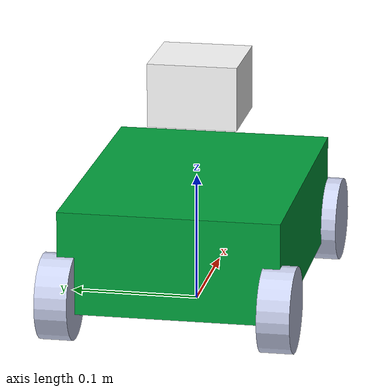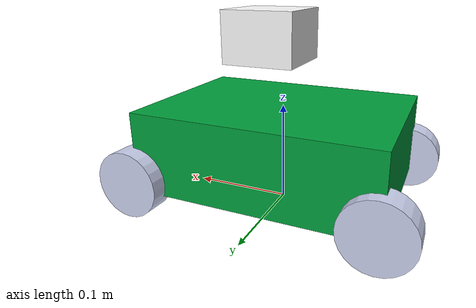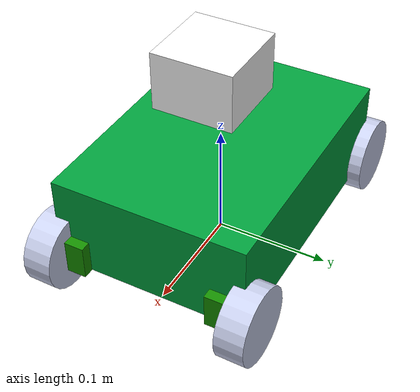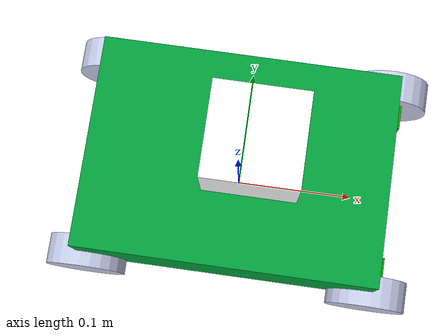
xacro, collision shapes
<?xml version="1.0" encoding="utf-8"?>
<robot name="picar2" xmlns:xacro="http://ros.org/wiki/xacro">

  <xacro:arg name="port"    default="/dev/ttyYahboom0"/>
  <xacro:arg name="baud"    default="460800"/>
  <xacro:arg name="use_sim" default="false"/>

  <ros2_control name="picar2" type="system">
    <hardware>
      <xacro:if value="$(arg use_sim)">
        <plugin>gz_ros2_control/GazeboSimSystem</plugin>
      </xacro:if>
      <xacro:unless value="$(arg use_sim)">
        <plugin>picar2_control/Picar2Hardware</plugin>
        <param name="port">$(arg port)</param>
        <param name="baud">$(arg baud)</param>
        <param name="steer_lut_us">-595 -454 -410 -364 -329 -299 -271 -252 -202 -151 -121 -101 128 154	193	257	308	354	433	464	493	545</param>
        <param name="steer_lut_rad">0.6756 0.5308 0.4578 0.4058 0.3513 0.3176 0.2790 0.2443 0.1994 0.1392 0.1062 0.0668 -0.1276 -0.1646 -0.2049 -0.2829	-0.3129	-0.3681	-0.4680	-0.4844	-0.5078	-0.6109</param>
      </xacro:unless>
    </hardware>

    <!-- Rear drive wheels (velocity-controlled) -->
    <joint name="back_left_joint">
      <command_interface name="velocity"/>
      <state_interface name="position"/>
      <state_interface name="velocity"/>
    </joint>
    <joint name="back_right_joint">
      <command_interface name="velocity"/>
      <state_interface name="position"/>
      <state_interface name="velocity"/>
    </joint>

    <!-- Front steering — single servo drives both; controller commands each
         independently (Ackermann inner/outer angles); write() averages them -->
    <joint name="front_left_steer_joint">
      <command_interface name="position">
        <param name="min">-0.6</param>
        <param name="max">0.6</param>
      </command_interface>
      <state_interface name="position"/>
    </joint>
    <joint name="front_right_steer_joint">
      <command_interface name="position">
        <param name="min">-0.6</param>
        <param name="max">0.6</param>
      </command_interface>
      <state_interface name="position"/>
    </joint>

    <!-- Front wheels — passive (no encoder); position held at 0 for TF -->
    <joint name="front_left_wheel_joint">
      <state_interface name="position"/>
    </joint>
    <joint name="front_right_wheel_joint">
      <state_interface name="position"/>
    </joint>
  </ros2_control>

  <!-- Gazebo: gz_ros2_control plugin (sim only) -->
  <xacro:if value="$(arg use_sim)">
    <gazebo>
      <plugin filename="gz_ros2_control-system"
              name="gz_ros2_control::GazeboSimROS2ControlPlugin">
        <parameters>$(find picar2_bringup)/config/controllers.yaml</parameters>
      </plugin>
    </gazebo>
  </xacro:if>

  <!-- ═══════════════════════════════════════════════════
       Links
       ═══════════════════════════════════════════════════ -->
  <link name="base_footprint"/>

  <link name="imu_link"/>

  <link name="base_link">
    <inertial>
      <origin xyz="-0.014025 -0.00011707 0.082168" rpy="0 0 0"/>
      <mass value="0.52447"/>
      <inertia ixx="0.00066245" ixy="-3.1852E-08" ixz="-4.6503E-05"
               iyy="0.0012486"  iyz="-3.356E-08"
               izz="0.0018052"/>
    </inertial>
    <visual>
      <origin xyz="0 0 0" rpy="0 0 0"/>
      <geometry><mesh filename="package://picar2_description/meshes/base_link.STL"/></geometry>
      <material name=""><color rgba="0 0.62745 0.23529 1"/></material>
    </visual>
    <collision>
      <origin xyz="0 0 0.04" rpy="0 0 0"/>
      <geometry><box size="0.24 0.17 0.08"/></geometry>
    </collision>
  </link>

  <link name="back_right_link">
    <inertial>
      <origin xyz="3.8959E-08 0.0015615 -6.3774E-08" rpy="0 0 0"/>
      <mass value="0.060236"/>
      <inertia ixx="2.5326E-05" ixy="-2.701E-10"  ixz="3.3546E-09"
               iyy="4.4342E-05" iyz="-2.9324E-10"
               izz="2.531E-05"/>
    </inertial>
    <visual>
      <origin xyz="0 0 0" rpy="0 0 0"/>
      <geometry><mesh filename="package://picar2_description/meshes/back_right_link.STL"/></geometry>
      <material name=""><color rgba="0.79216 0.81961 0.93333 1"/></material>
    </visual>
    <collision>
      <origin xyz="0 0 0" rpy="1.5708 0 0"/>
      <geometry><cylinder radius="0.033" length="0.025"/></geometry>
    </collision>
  </link>

  <link name="back_left_link">
    <inertial>
      <origin xyz="-6.87E-08 -0.0015615 3.003E-08" rpy="0 0 0"/>
      <mass value="0.060236"/>
      <inertia ixx="2.531E-05"  ixy="-3.651E-11"  ixz="1.156E-09"
               iyy="4.4343E-05" iyz="-7.02E-11"
               izz="2.5328E-05"/>
    </inertial>
    <visual>
      <origin xyz="0 0 0" rpy="0 0 0"/>
      <geometry><mesh filename="package://picar2_description/meshes/back_right_link.STL"/></geometry>
      <material name=""><color rgba="0.79216 0.81961 0.93333 1"/></material>
    </visual>
    <collision>
      <origin xyz="0 0 0" rpy="1.5708 0 0"/>
      <geometry><cylinder radius="0.033" length="0.025"/></geometry>
    </collision>
  </link>

  <link name="front_left_steer">
    <inertial>
      <origin xyz="-0.0044676 0.0031203 -0.014101" rpy="0 0 0"/>
      <mass value="0.002176"/>
      <inertia ixx="1.4001E-07" ixy="-7.8357E-08" ixz="1.1741E-12"
               iyy="2.7801E-07" iyz="7.8069E-12"
               izz="2.909E-07"/>
    </inertial>
    <visual>
      <origin xyz="0 0 0" rpy="0 0 0"/>
      <geometry><mesh filename="package://picar2_description/meshes/front_left_steer.STL"/></geometry>
      <material name=""><color rgba="0.082353 0.56078 0 1"/></material>
    </visual>
    <collision>
      <origin xyz="0 0 -0.01" rpy="0 0 0"/>
      <geometry><box size="0.02 0.02 0.03"/></geometry>
    </collision>
  </link>

  <link name="front_left_wheel">
    <inertial>
      <origin xyz="-6.1417E-08 -0.0048115 4.113E-08" rpy="0 0 0"/>
      <mass value="0.060236"/>
      <inertia ixx="2.531E-05"  ixy="2.9987E-10" ixz="3.7781E-09"
               iyy="4.4342E-05" iyz="2.6181E-10"
               izz="2.5326E-05"/>
    </inertial>
    <visual>
      <origin xyz="0 0 0" rpy="0 0 0"/>
      <geometry><mesh filename="package://picar2_description/meshes/back_right_link.STL"/></geometry>
      <material name=""><color rgba="0.79216 0.81961 0.93333 1"/></material>
    </visual>
    <collision>
      <origin xyz="0 0 0" rpy="1.5708 0 0"/>
      <geometry><cylinder radius="0.033" length="0.025"/></geometry>
    </collision>
  </link>

  <link name="front_right_steer">
    <inertial>
      <origin xyz="-0.0045387 -0.0030159 -0.012099" rpy="0 0 0"/>
      <mass value="0.002176"/>
      <inertia ixx="1.4372E-07" ixy="8.1469E-08"  ixz="-1.0492E-12"
               iyy="2.7431E-07" iyz="7.8675E-12"
               izz="2.909E-07"/>
    </inertial>
    <visual>
      <origin xyz="0 0 0" rpy="0 0 0"/>
      <geometry><mesh filename="package://picar2_description/meshes/front_left_steer.STL"/></geometry>
      <material name=""><color rgba="0.082353 0.56078 0 1"/></material>
    </visual>
    <collision>
      <origin xyz="0 0 -0.01" rpy="0 0 0"/>
      <geometry><box size="0.02 0.02 0.03"/></geometry>
    </collision>
  </link>

  <link name="front_right_wheel">
    <inertial>
      <origin xyz="5.5753E-08 0.0015615 -5.0453E-08" rpy="0 0 0"/>
      <mass value="0.060236"/>
      <inertia ixx="2.5325E-05" ixy="5.201E-11"  ixz="7.1484E-09"
               iyy="4.4343E-05" iyz="6.0924E-11"
               izz="2.5314E-05"/>
    </inertial>
    <visual>
      <origin xyz="0 0 0" rpy="0 0 0"/>
      <geometry><mesh filename="package://picar2_description/meshes/back_right_link.STL"/></geometry>
      <material name=""><color rgba="0.79216 0.81961 0.93333 1"/></material>
    </visual>
    <collision>
      <origin xyz="0 0 0" rpy="1.5708 0 0"/>
      <geometry><cylinder radius="0.033" length="0.025"/></geometry>
    </collision>
  </link>

  <link name="laser_link">
    <inertial>
      <origin xyz="0 0 0" rpy="0 0 0"/>
      <mass value="0"/>
      <inertia ixx="0" ixy="0" ixz="0" iyy="0" iyz="0" izz="0"/>
    </inertial>
    <visual>
      <origin xyz="0 0 0" rpy="0 0 0"/>
      <geometry><mesh filename="package://picar2_description/meshes/laser_link.STL"/></geometry>
      <material name=""><color rgba="1 1 1 1"/></material>
    </visual>
    <collision>
      <origin xyz="0 0 0" rpy="0 0 0"/>
      <geometry><box size="0.07 0.07 0.05"/></geometry>
    </collision>
  </link>

  <!-- ═══════════════════════════════════════════════════
       Joints
       ═══════════════════════════════════════════════════ -->
  <joint name="base_joint" type="fixed">
    <parent link="base_footprint"/>
    <child  link="base_link"/>
    <origin xyz="0.0 0.0 0.0215" rpy="0 0 0"/>
  </joint>

  <joint name="base_imu" type="fixed">
    <parent link="base_link"/>
    <child  link="imu_link"/>
    <origin xyz="-0.05 0.0 0.05" rpy="0 0 0"/>
  </joint>

  <!-- Rear wheels (continuous — drive wheels) -->
  <joint name="back_right_joint" type="continuous">
    <origin xyz="-0.11607 -0.08425 0.0125" rpy="0 0 0"/>
    <parent link="base_link"/>
    <child  link="back_right_link"/>
    <axis xyz="0 1 0"/>
    <dynamics damping="0.01" friction="0.0"/>
  </joint>

  <joint name="back_left_joint" type="continuous">
    <origin xyz="-0.11607 0.08425 0.0125" rpy="0 0 0"/>
    <parent link="base_link"/>
    <child  link="back_left_link"/>
    <axis xyz="0 1 0"/>
    <dynamics damping="0.01" friction="0.0"/>
  </joint>

  <!-- Front steering knuckles (revolute — single servo via linkage) -->
  <joint name="front_left_steer_joint" type="revolute">
    <origin xyz="0.11922 0.065 0.0262" rpy="0 0 0"/>
    <parent link="base_link"/>
    <child  link="front_left_steer"/>
    <axis xyz="0 0 1"/>
    <limit lower="-0.6" upper="0.6" effort="10" velocity="1"/>
    <dynamics damping="0.01" friction="0.0"/>
  </joint>

  <joint name="front_right_steer_joint" type="revolute">
    <origin xyz="0.11922 -0.065 0.0242" rpy="0 0 0"/>
    <parent link="base_link"/>
    <child  link="front_right_steer"/>
    <axis xyz="0 0 1"/>
    <limit lower="-0.6" upper="0.6" effort="10" velocity="1"/>
    <dynamics damping="0.01" friction="0.0"/>
  </joint>

  <!-- Front wheels (passive — follow steer knuckle) -->
  <joint name="front_left_wheel_joint" type="continuous">
    <origin xyz="0.00022897 0.0228 -0.0141" rpy="0 0 -0.010042"/>
    <parent link="front_left_steer"/>
    <child  link="front_left_wheel"/>
    <axis xyz="0 -1 0"/>
    <dynamics damping="0.01" friction="0.0"/>
  </joint>

  <joint name="front_right_wheel_joint" type="continuous">
    <origin xyz="-0.00025662 -0.019549 -0.0121" rpy="0 0 -0.013126"/>
    <parent link="front_right_steer"/>
    <child  link="front_right_wheel"/>
    <axis xyz="0 1 0"/>
    <dynamics damping="0.01" friction="0.0"/>
  </joint>

  <!-- Sensors (fixed) -->
  <joint name="laser_joint" type="fixed">
    <origin xyz="0.012548 0 0.147" rpy="0 0 0"/>
    <parent link="base_link"/>
    <child  link="laser_link"/>
  </joint>

  <!-- ═══════════════════════════════════════════════════
       Gazebo properties (sim only)
       ═══════════════════════════════════════════════════ -->

  <!-- Drive wheel friction -->
  <gazebo reference="back_left_link">
    <mu1>1.0</mu1><mu2>1.0</mu2>
    <kp>1e6</kp><kd>1.0</kd>
  </gazebo>
  <gazebo reference="back_right_link">
    <mu1>1.0</mu1><mu2>1.0</mu2>
    <kp>1e6</kp><kd>1.0</kd>
  </gazebo>
  <!-- Front wheels low friction (steered, not driven) -->
  <gazebo reference="front_left_wheel">
    <mu1>0.5</mu1><mu2>0.5</mu2>
  </gazebo>
  <gazebo reference="front_right_wheel">
    <mu1>0.5</mu1><mu2>0.5</mu2>
  </gazebo>

  <!-- IMU sensor -->
  <gazebo reference="imu_link">
    <sensor name="imu_sensor" type="imu">
      <always_on>1</always_on>
      <update_rate>50</update_rate>
      <topic>/model/picar2/imu</topic>
      <gz_frame_id>imu_link</gz_frame_id>
      <imu>
        <angular_velocity>
          <x><noise type="gaussian"><mean>0</mean><stddev>0.009</stddev></noise></x>
          <y><noise type="gaussian"><mean>0</mean><stddev>0.009</stddev></noise></y>
          <z><noise type="gaussian"><mean>0</mean><stddev>0.009</stddev></noise></z>
        </angular_velocity>
        <linear_acceleration>
          <x><noise type="gaussian"><mean>0</mean><stddev>0.021</stddev></noise></x>
          <y><noise type="gaussian"><mean>0</mean><stddev>0.021</stddev></noise></y>
          <z><noise type="gaussian"><mean>0</mean><stddev>0.021</stddev></noise></z>
        </linear_acceleration>
      </imu>
    </sensor>
  </gazebo>

  <!-- LiDAR sensor -->
  <gazebo reference="laser_link">
    <sensor name="lidar" type="gpu_lidar">
      <always_on>1</always_on>
      <update_rate>10</update_rate>
      <topic>/model/picar2/scan</topic>
      <gz_frame_id>laser_link</gz_frame_id>
      <lidar>
        <scan>
          <horizontal>
            <samples>360</samples>
            <resolution>1</resolution>
            <min_angle>-3.14159265</min_angle>
            <max_angle>3.14159265</max_angle>
          </horizontal>
        </scan>
        <range>
          <min>0.06</min>
          <max>5.0</max>
          <resolution>0.001</resolution>
        </range>
        <noise type="gaussian">
          <mean>0.0</mean>
          <stddev>0.01</stddev>
        </noise>
      </lidar>
    </sensor>
  </gazebo>

</robot>
